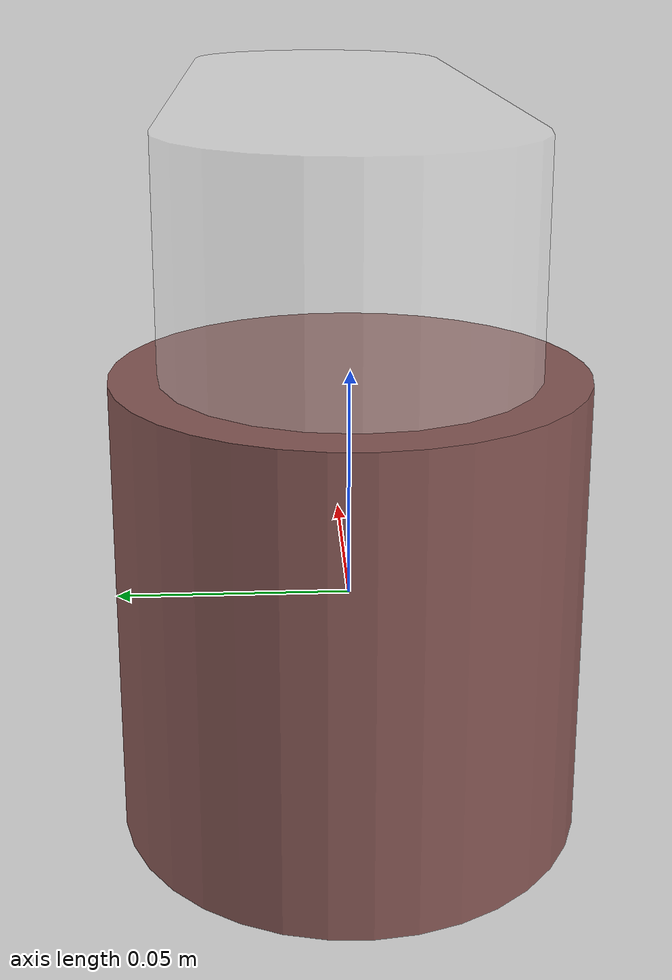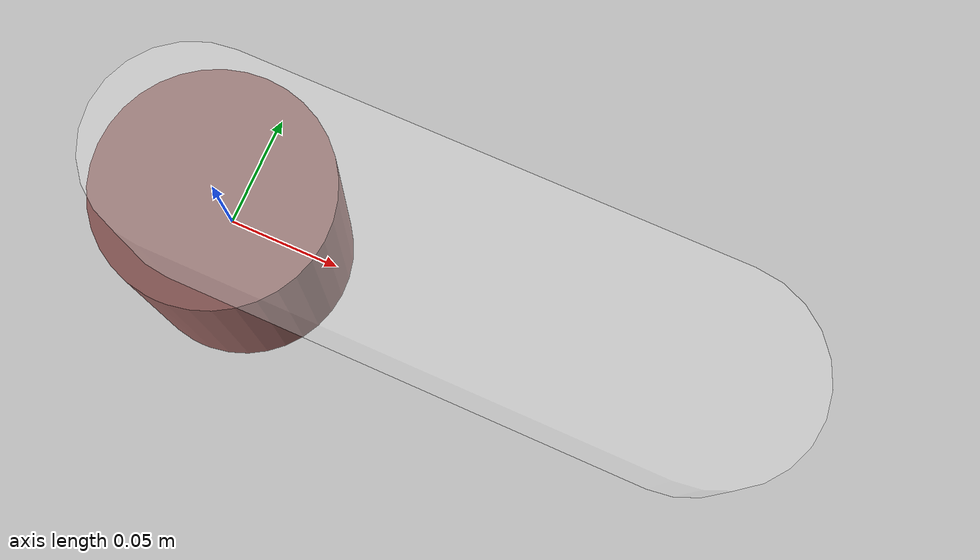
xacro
<?xml version="1.0" encoding="utf-8"?>

<robot name="bengine">

  <link name="base_link">
    <inertial>
      <origin
        xyz="0 9.74542958129844E-19 -4.31390337655099E-18"
        rpy="0 0 0" />
      <mass
        value="6.99004365423729" />
      <inertia
        ixx="0.0101938136624294"
        ixy="0"
        ixz="-3.37700910261971E-35"
        iyy="0.0101938136624294"
        iyz="-8.16962303997948E-35"
        izz="0.00873755456779662" />
    </inertial>
    <visual>
      <origin
        xyz="0 0 0"
        rpy="0 0 0" />
      <geometry>
        <mesh
          filename="package://gazebo_demo/meshes/base_link.STL" />
      </geometry>
      <material
        name="">
        <color
          rgba="0.537254901960784 0.349019607843137 0.337254901960784 1" />
      </material>
    </visual>
    <collision>
      <origin
        xyz="0 0 0"
        rpy="0 0 0" />
      <geometry>
        <mesh
          filename="package://gazebo_demo/meshes/base_link.STL" />
      </geometry>
    </collision>
    <dynamic damping="0.7" friction="0.5"/>
  </link>

  <gazebo reference="base_link">
    <material>Gazebo/White</material>
  </gazebo>

  <link
    name="link_1">
    <inertial>
      <origin
        xyz="0.1 -1.86377227087894E-19 -1.38777878078145E-17"
        rpy="0 0 0" />
      <mass
        value="1.12492033114729" />
      <inertia
        ixx="0.000798459868114599"
        ixy="1.67727625611222E-20"
        ixz="8.85083255431749E-21"
        iyy="0.00679752984625413"
        iyz="9.66746937132908E-21"
        izz="0.00712727290972403" />
    </inertial>
    <visual>
      <origin
        xyz="0 0 0"
        rpy="0 0 0" />
      <geometry>
        <mesh
          filename="package://gazebo_demo/meshes/link_1.STL" />
      </geometry>
      <material
        name="">
        <color
          rgba="1 1 1 0.32" />
      </material>
    </visual>
    <collision>
      <origin
        xyz="0 0 0"
        rpy="0 0 0" />
      <geometry>
        <mesh
          filename="package://gazebo_demo/meshes/link_1.STL" />
      </geometry>
    </collision>
    <dynamic damping="0.7" friction="0.5"/>
  </link>

  <gazebo reference="link_1">
    <material>Gazebo/Black</material>
  </gazebo>

  <joint name="joint_1" type="revolute">
    <origin
      xyz="0 0 0.075"
      rpy="0 0 0" />
    <parent
      link="base_link" />
    <child
      link="link_1" />
    <axis
      xyz="0 0 -1" />
    <limit
      lower="-1.57"
      upper="1.57"
      effort="1"
      velocity="10" />
  </joint>

  <transmission name="joint_1_trans">
    <type>transmission_interface/SimpleTransmission</type>
    <joint name="joint_1">
      <hardwareInterface>hardware_interface/PositionJointInterface</hardwareInterface>
    </joint>
    <actuator name="joint_1_motor">
      <hardwareInterface>hardware_interface/PositionJointInterface</hardwareInterface>
      <mechanicalReduction>1</mechanicalReduction>
    </actuator>
  </transmission>

  <gazebo>
    <plugin name="gazebo_ros_control" filename="libgazebo_ros_control.so">
      <robotNamespace>/bengine</robotNamespace>
      <robotSimType>gazebo_ros_control/DefaultRobotHWSim</robotSimType>
      <legacyModeNS>true</legacyModeNS>
    </plugin>
  </gazebo>

</robot>
